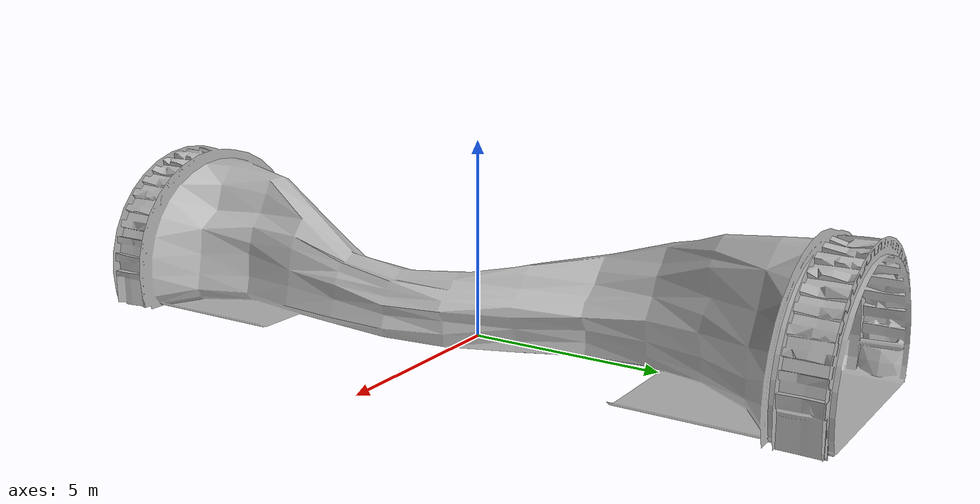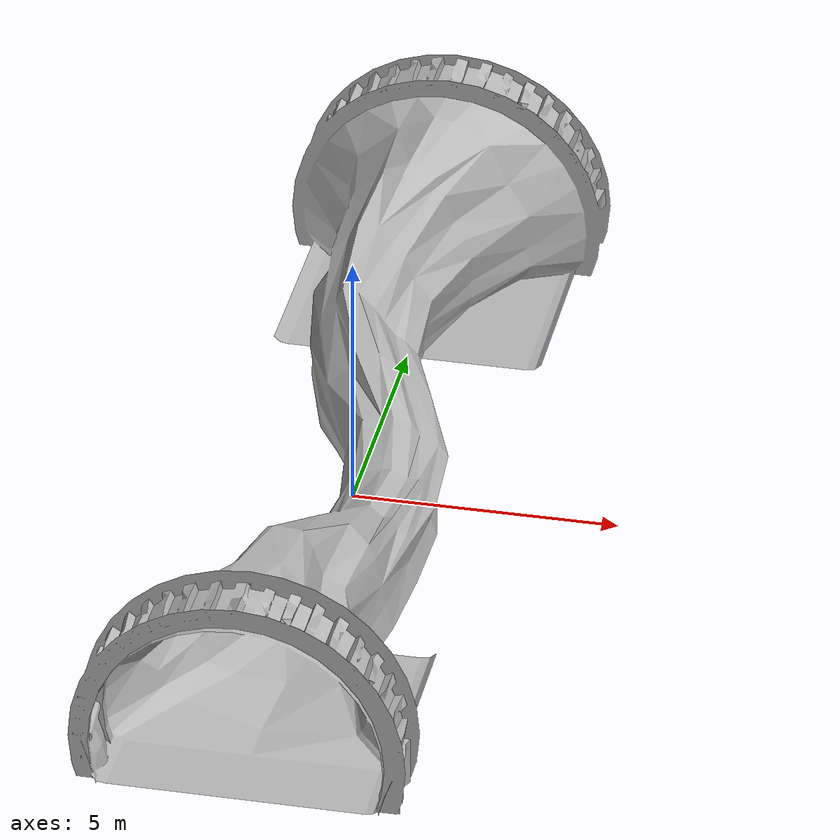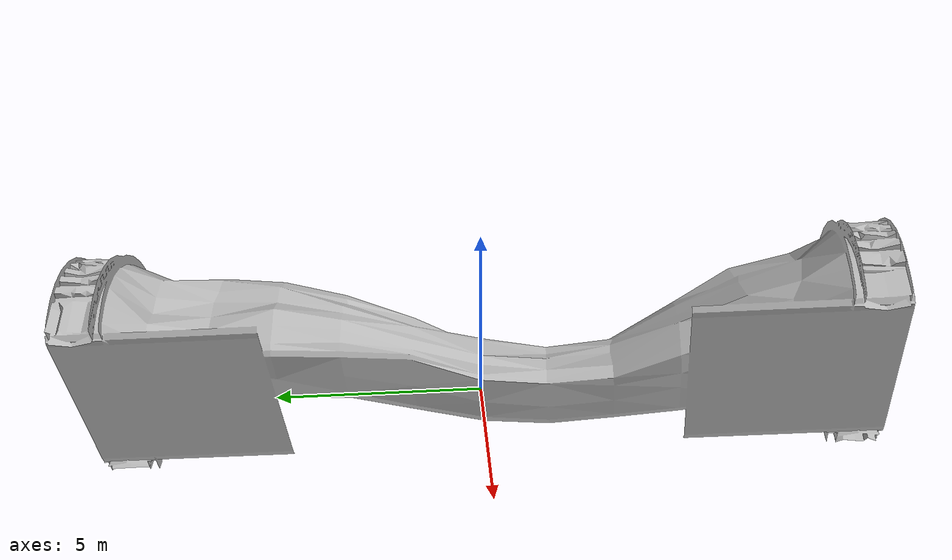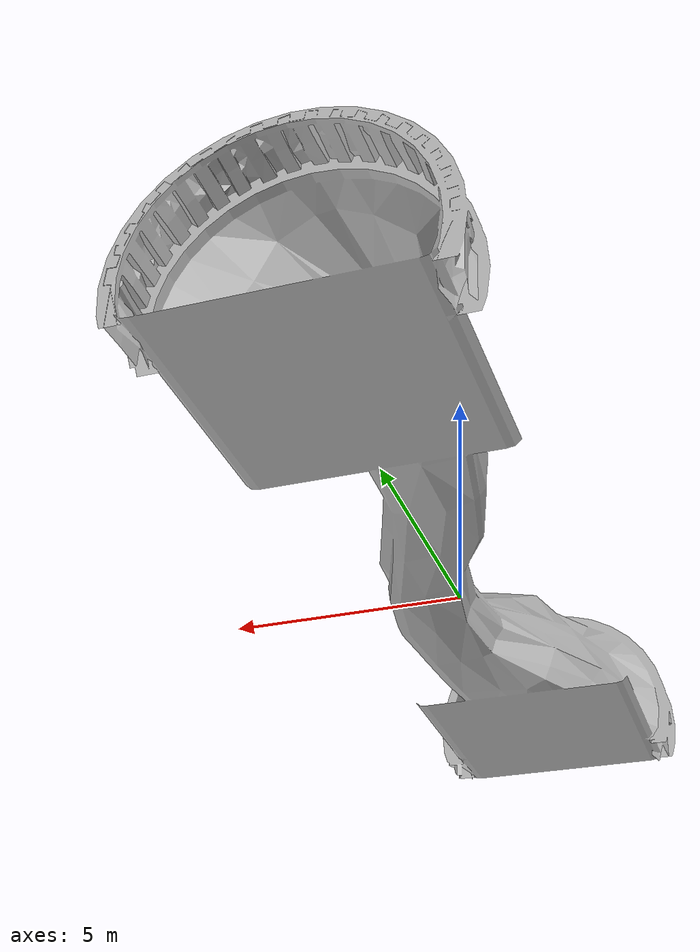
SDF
<?xml version='1.0' ?>
<sdf version='1.6'>
  <model name='Constrained Tunnel Tile Short'>
    <pose>0 0 0 0 0 0</pose>
    <static>true</static>
    <link name="link">
      <collision name="collision">
        <geometry>
          <mesh>
            <uri>model://Constrained Tunnel Tile Short/meshes/Constrained Tunnel Tile Short.dae</uri>
         </mesh>
        </geometry>
      </collision>
      <visual name="visual">
        <geometry>
          <mesh>
            <uri>model://Constrained Tunnel Tile Short/meshes/Constrained Tunnel Tile Short.dae</uri>
         </mesh>
        </geometry>
      </visual>
    </link>
  </model>
 </sdf>
